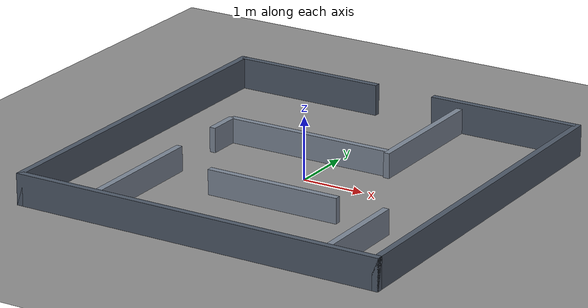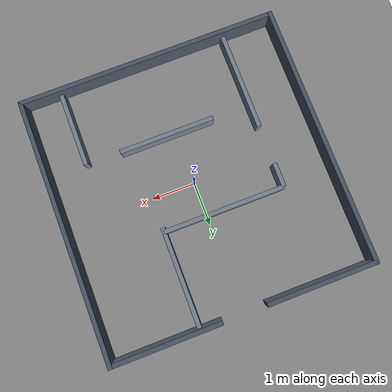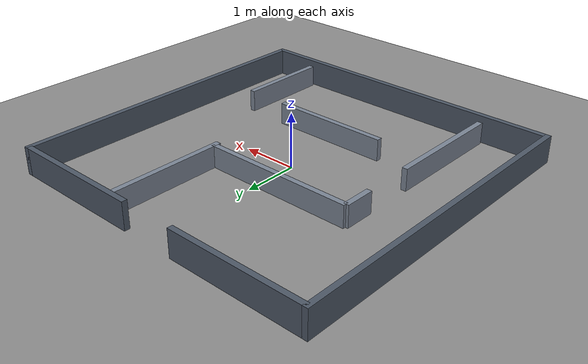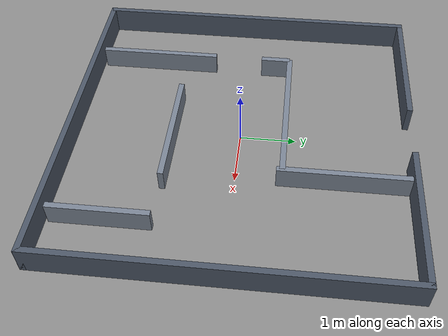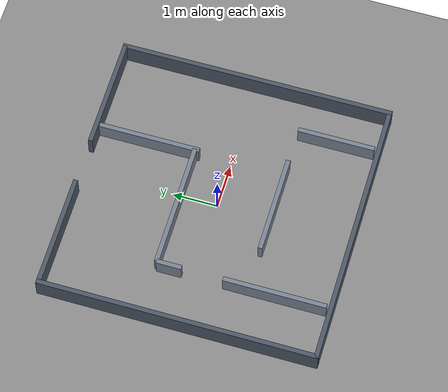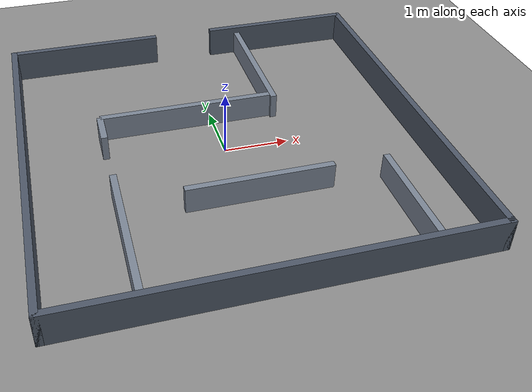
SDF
<?xml version="1.0"?>
<sdf version="1.10">
  <world name="small_rover_drive_test">
    <gravity>0 0 -9.81</gravity>
    <physics name="1ms" type="gz-physics" default="true">
      <max_step_size>0.001</max_step_size>
      <real_time_factor>1</real_time_factor>
    </physics>
    <plugin filename="gz-sim-physics-system" name="gz::sim::systems::Physics"/>
    <plugin filename="gz-sim-sensors-system" name="gz::sim::systems::Sensors">
      <render_engine>ogre2</render_engine>
    </plugin>
    <plugin filename="gz-sim-user-commands-system" name="gz::sim::systems::UserCommands"/>
    <plugin filename="gz-sim-scene-broadcaster-system" name="gz::sim::systems::SceneBroadcaster"/>
    <light type="directional" name="sun"><pose>0 0 10 0 0 0</pose><cast_shadows>true</cast_shadows><diffuse>0.8 0.8 0.8 1</diffuse><specular>0.2 0.2 0.2 1</specular><attenuation><range>1000</range><constant>0.9</constant><linear>0.01</linear><quadratic>0.001</quadratic></attenuation><direction>-0.5 0.1 -0.9</direction></light>
    <model name="ground_plane"><static>true</static><link name="link"><collision name="collision"><geometry><plane><normal>0 0 1</normal><size>20 20</size></plane></geometry><surface><friction><ode><mu>1.5</mu><mu2>1.2</mu2></ode></friction></surface></collision><visual name="visual"><geometry><plane><normal>0 0 1</normal><size>20 20</size></plane></geometry><material><ambient>0.55 0.55 0.55 1</ambient><diffuse>0.55 0.55 0.55 1</diffuse></material></visual></link></model>
    <!-- Outer boundary -->
    <model name="wall_1"><static>true</static><pose>-1.75 3 0.25 0 0 0</pose><link name="link"><collision name="collision"><geometry><box><size>2.5 0.1 0.5</size></box></geometry></collision><visual name="visual"><geometry><box><size>2.5 0.1 0.5</size></box></geometry><material><diffuse>0.30 0.34 0.40 1</diffuse></material></visual></link></model>
    <model name="wall_2"><static>true</static><pose>1.75 3 0.25 0 0 0</pose><link name="link"><collision name="collision"><geometry><box><size>2.5 0.1 0.5</size></box></geometry></collision><visual name="visual"><geometry><box><size>2.5 0.1 0.5</size></box></geometry><material><diffuse>0.30 0.34 0.40 1</diffuse></material></visual></link></model>
    <model name="wall_3"><static>true</static><pose>0 -3 0.25 0 0 0</pose><link name="link"><collision name="collision"><geometry><box><size>6.1 0.1 0.5</size></box></geometry></collision><visual name="visual"><geometry><box><size>6.1 0.1 0.5</size></box></geometry><material><diffuse>0.30 0.34 0.40 1</diffuse></material></visual></link></model>
    <model name="wall_4"><static>true</static><pose>3 0 0.25 0 0 0</pose><link name="link"><collision name="collision"><geometry><box><size>0.1 6.1 0.5</size></box></geometry></collision><visual name="visual"><geometry><box><size>0.1 6.1 0.5</size></box></geometry><material><diffuse>0.30 0.34 0.40 1</diffuse></material></visual></link></model>
    <model name="wall_5"><static>true</static><pose>-3 0 0.25 0 0 0</pose><link name="link"><collision name="collision"><geometry><box><size>0.1 6.1 0.5</size></box></geometry></collision><visual name="visual"><geometry><box><size>0.1 6.1 0.5</size></box></geometry><material><diffuse>0.30 0.34 0.40 1</diffuse></material></visual></link></model>

    <!-- Staggered maze walls leave corridors at least 0.8 m wide. -->
    <model name="wall_6"><static>true</static><pose>-1.8 -1.775 0.2 0 0 0</pose><link name="link"><collision name="collision"><geometry><box><size>0.1 2.25 0.4</size></box></geometry></collision><visual name="visual"><geometry><box><size>0.1 2.25 0.4</size></box></geometry><material><diffuse>0.48 0.52 0.58 1</diffuse></material></visual></link></model>
    <model name="wall_7"><static>true</static><pose>-1.8 0.525 0.2 0 0 0</pose><link name="link"><collision name="collision"><geometry><box><size>0.1 0.55 0.4</size></box></geometry></collision><visual name="visual"><geometry><box><size>0.1 0.55 0.4</size></box></geometry><material><diffuse>0.48 0.52 0.58 1</diffuse></material></visual></link></model>
    <model name="wall_8"><static>true</static><pose>-0.4 0.8 0.2 0 0 0</pose><link name="link"><collision name="collision"><geometry><box><size>2.8 0.1 0.4</size></box></geometry></collision><visual name="visual"><geometry><box><size>2.8 0.1 0.4</size></box></geometry><material><diffuse>0.48 0.52 0.58 1</diffuse></material></visual></link></model>
    <model name="wall_9"><static>true</static><pose>1.0 1.85 0.2 0 0 0</pose><link name="link"><collision name="collision"><geometry><box><size>0.1 2.3 0.4</size></box></geometry></collision><visual name="visual"><geometry><box><size>0.1 2.3 0.4</size></box></geometry><material><diffuse>0.48 0.52 0.58 1</diffuse></material></visual></link></model>
    <model name="wall_10"><static>true</static><pose>0.2 -1.2 0.2 0 0 0</pose><link name="link"><collision name="collision"><geometry><box><size>2.2 0.1 0.4</size></box></geometry></collision><visual name="visual"><geometry><box><size>2.2 0.1 0.4</size></box></geometry><material><diffuse>0.48 0.52 0.58 1</diffuse></material></visual></link></model>
    <model name="wall_11"><static>true</static><pose>2.1 -2.05 0.2 0 0 0</pose><link name="link"><collision name="collision"><geometry><box><size>0.1 1.7 0.4</size></box></geometry></collision><visual name="visual"><geometry><box><size>0.1 1.7 0.4</size></box></geometry><material><diffuse>0.48 0.52 0.58 1</diffuse></material></visual></link></model>
  </world>
</sdf>
